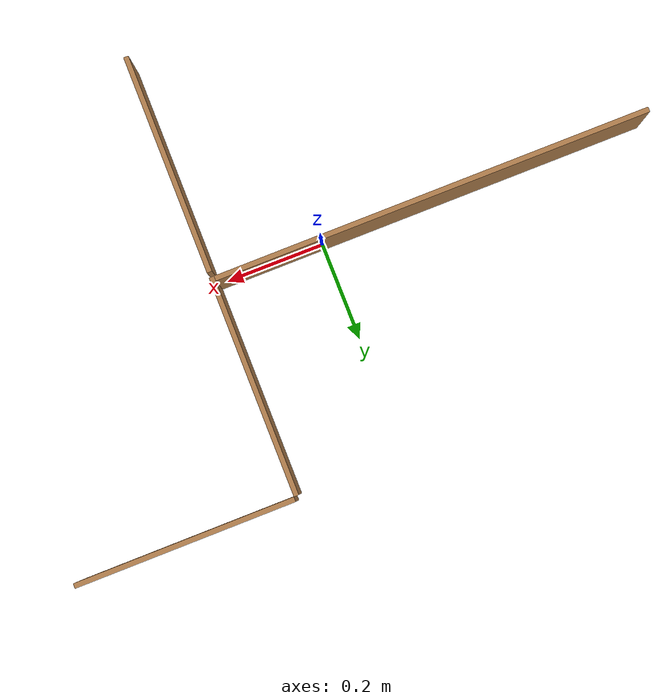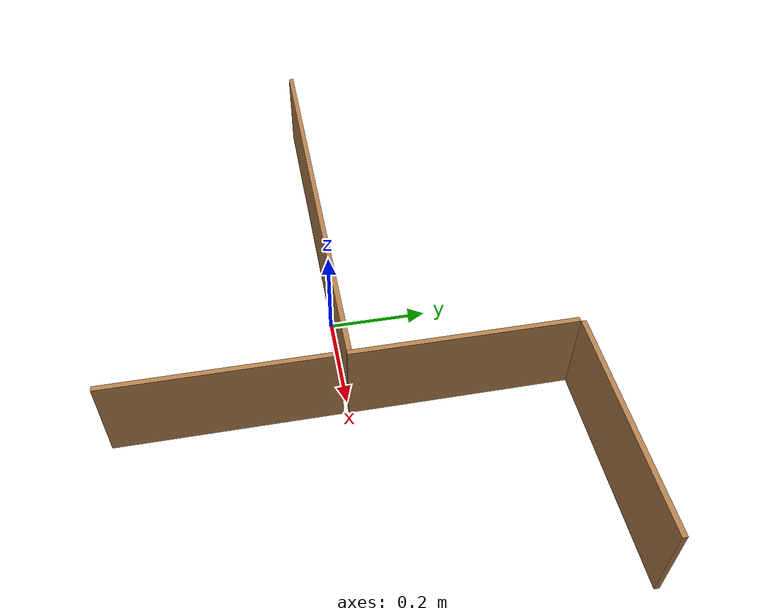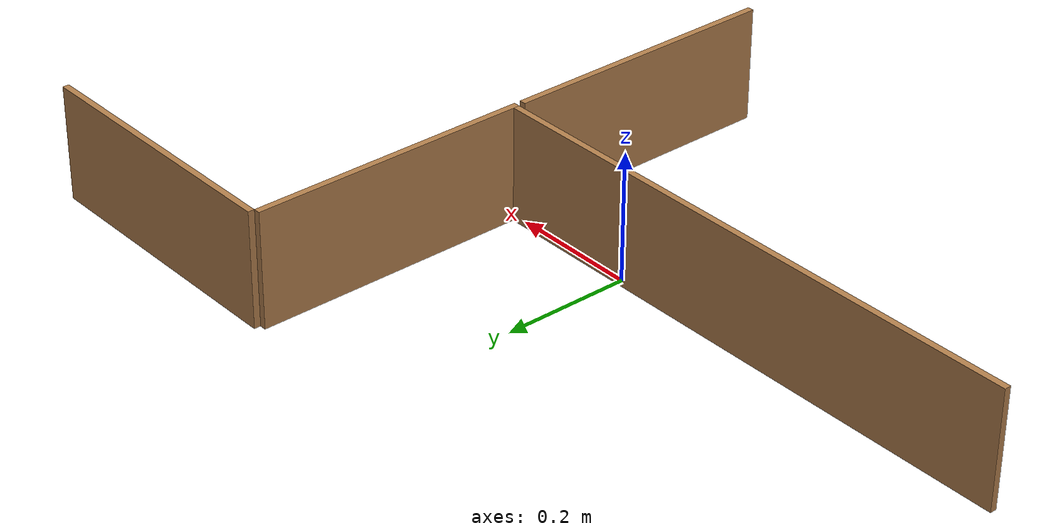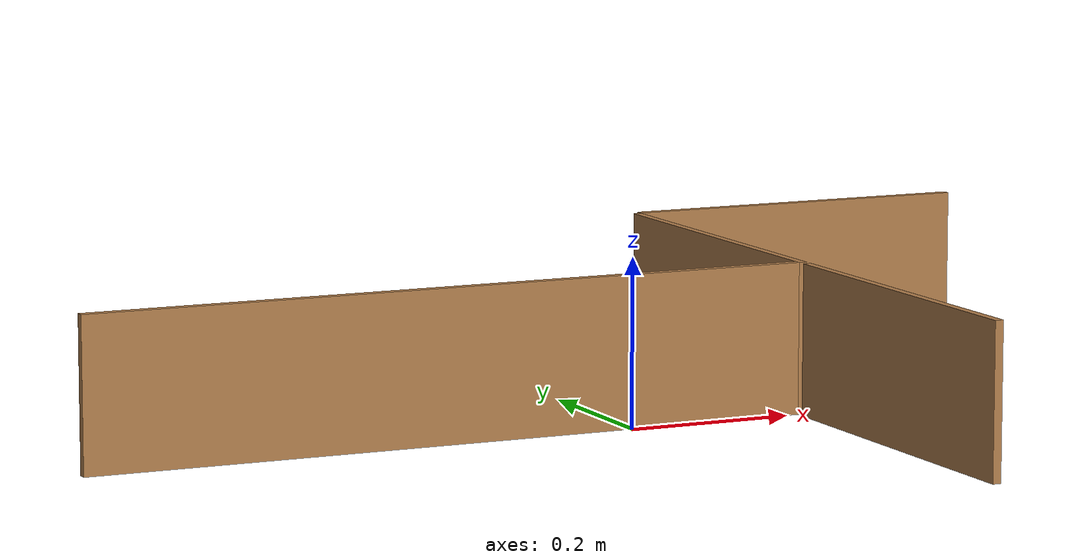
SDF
<?xml version="1.0"?>
<sdf version="1.4">
<model name="task3_room3">
  <static>false</static>
  <link name='room_3'>
    <pose frame=''>0 0 0.09 0 0 0</pose>
    <collision name='long_1coll'>
      <geometry>
        <box>
          <size>0.88 0.01 0.18</size>
        </box>
      </geometry>
      <pose frame=''>-0.225 0.005 0 0 0 0</pose>
    </collision>
    <visual name='long_1vis'>
      <pose frame=''>-0.225 0.005 0 0 0 0</pose>
      <geometry>
        <box>
          <size>0.88 0.01 0.18</size>
        </box>
      </geometry>
      <material>
        <script>
          <uri>file://media/materials/scripts/gazebo.material</uri>
          <name>Gazebo/Wood</name>
        </script>
      </material>
    </visual>
    <collision name='short_1coll'>
      <geometry>
        <box>
          <size>0.01 0.44 0.18</size>
        </box>
      </geometry>
      <pose frame=''>0.22 -0.23 0 0 0 0</pose>
    </collision>
    <visual name='short_1vis'>
      <pose frame=''>0.22 -0.23 0 0 0 0</pose>
      <geometry>
        <box>
          <size>0.01 0.44 0.18</size>
        </box>
      </geometry>
      <material>
        <script>
          <uri>file://media/materials/scripts/gazebo.material</uri>
          <name>Gazebo/Wood</name>
        </script>
      </material>
    </visual>
    <collision name='short_2coll'>
      <geometry>
        <box>
          <size>0.01 0.44 0.18</size>
        </box>
      </geometry>
      <pose frame=''>0.22 0.22 0 0 0 0</pose>
    </collision>
    <visual name='short_2vis'>
      <pose frame=''>0.22 0.22 0 0 0 0</pose>
      <geometry>
        <box>
          <size>0.01 0.44 0.18</size>
        </box>
      </geometry>
      <material>
        <script>
          <uri>file://media/materials/scripts/gazebo.material</uri>
          <name>Gazebo/Wood</name>
        </script>
      </material>
    </visual>
    <collision name='short_3coll'>
      <geometry>
        <box>
          <size>0.44 0.01 0.18</size>
        </box>
      </geometry>
      <pose frame=''>0.445 0.445 0 0 0 0</pose>
    </collision>
    <visual name='short_3vis'>
      <pose frame=''>0.445 0.445 0 0 0 0</pose>
      <geometry>
        <box>
          <size>0.44 0.01 0.18</size>
        </box>
      </geometry>
      <material>
        <script>
          <uri>file://media/materials/scripts/gazebo.material</uri>
          <name>Gazebo/Wood</name>
        </script>
      </material>
    </visual>
  </link>
</model>
</sdf>
